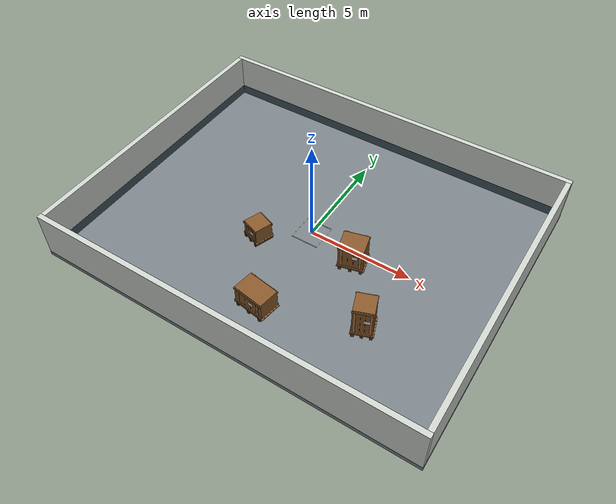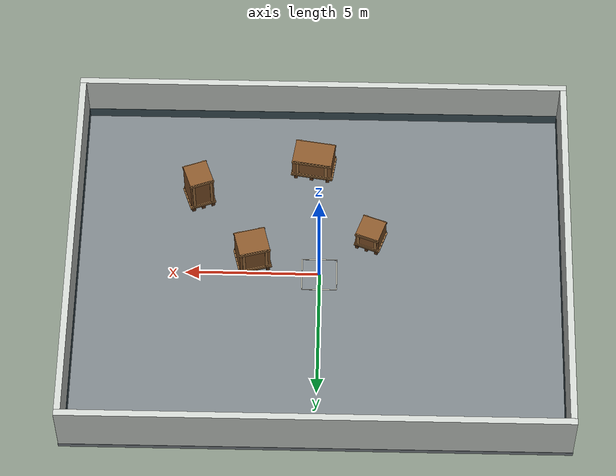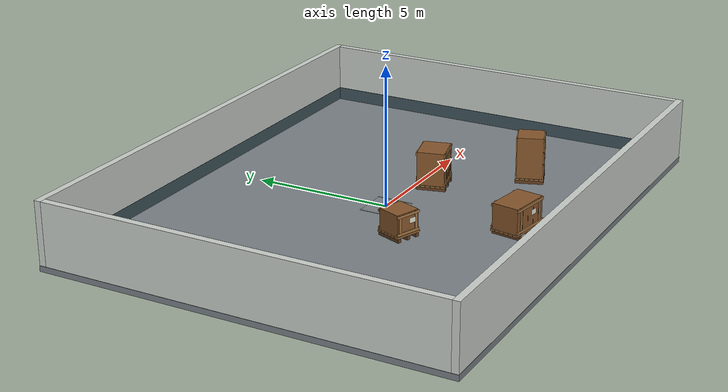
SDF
<sdf version="1.6">
 <world name="go2_workshop">
  <model name="floor">
   <static>true</static>
   <link name="body">
    <collision name="concrete_slab_collision">
     <pose>0 0 -0.1 0 0 0</pose>
     <geometry><box><size>18.5 14.5 0.2</size></box></geometry>
     <surface><friction><ode><mu>1</mu><mu2>1</mu2></ode></friction></surface>
    </collision>
    <visual name="concrete_slab">
     <pose>0 0 -0.1 0 0 0</pose>
     <geometry><box><size>18.5 14.5 0.2</size></box></geometry>
     <material>
      <ambient>0.48 0.51 0.53 1</ambient>
      <diffuse>0.48 0.51 0.53 1</diffuse>
      <specular>.08 .08 .08 1</specular>
     </material>
    </visual>
   </link>
  </model>
  <model name="perimeter_walls">
   <static>true</static>
   <link name="body">
    <collision name="north_collision">
     <pose>0 7.12 1.1 0 0 0</pose>
     <geometry><box><size>18.48 0.24 2.2</size></box></geometry>
    </collision>
    <visual name="north">
     <pose>0 7.12 1.1 0 0 0</pose>
     <geometry><box><size>18.48 0.24 2.2</size></box></geometry>
     <material>
      <ambient>0.8 0.82 0.8 1</ambient>
      <diffuse>0.8 0.82 0.8 1</diffuse>
      <specular>.08 .08 .08 1</specular>
     </material>
    </visual>
    <visual name="north_paint">
     <pose>0 6.998 0.24 0 0 0</pose>
     <geometry><box><size>18 0.004 0.48</size></box></geometry>
     <material>
      <ambient>0.25 0.33 0.36 1</ambient>
      <diffuse>0.25 0.33 0.36 1</diffuse>
      <specular>.08 .08 .08 1</specular>
     </material>
     <cast_shadows>false</cast_shadows>
    </visual>
    <collision name="south_collision">
     <pose>0 -7.12 1.1 0 0 0</pose>
     <geometry><box><size>18.48 0.24 2.2</size></box></geometry>
    </collision>
    <visual name="south">
     <pose>0 -7.12 1.1 0 0 0</pose>
     <geometry><box><size>18.48 0.24 2.2</size></box></geometry>
     <material>
      <ambient>0.8 0.82 0.8 1</ambient>
      <diffuse>0.8 0.82 0.8 1</diffuse>
      <specular>.08 .08 .08 1</specular>
     </material>
    </visual>
    <visual name="south_paint">
     <pose>0 -6.998 0.24 0 0 0</pose>
     <geometry><box><size>18 0.004 0.48</size></box></geometry>
     <material>
      <ambient>0.25 0.33 0.36 1</ambient>
      <diffuse>0.25 0.33 0.36 1</diffuse>
      <specular>.08 .08 .08 1</specular>
     </material>
     <cast_shadows>false</cast_shadows>
    </visual>
    <collision name="west_collision">
     <pose>-9.12 0 1.1 0 0 0</pose>
     <geometry><box><size>0.24 14 2.2</size></box></geometry>
    </collision>
    <visual name="west">
     <pose>-9.12 0 1.1 0 0 0</pose>
     <geometry><box><size>0.24 14 2.2</size></box></geometry>
     <material>
      <ambient>0.8 0.82 0.8 1</ambient>
      <diffuse>0.8 0.82 0.8 1</diffuse>
      <specular>.08 .08 .08 1</specular>
     </material>
    </visual>
    <visual name="west_paint">
     <pose>-8.998 0 0.24 0 0 0</pose>
     <geometry><box><size>0.004 14 0.48</size></box></geometry>
     <material>
      <ambient>0.25 0.33 0.36 1</ambient>
      <diffuse>0.25 0.33 0.36 1</diffuse>
      <specular>.08 .08 .08 1</specular>
     </material>
     <cast_shadows>false</cast_shadows>
    </visual>
    <collision name="east_collision">
     <pose>9.12 0 1.1 0 0 0</pose>
     <geometry><box><size>0.24 14 2.2</size></box></geometry>
    </collision>
    <visual name="east">
     <pose>9.12 0 1.1 0 0 0</pose>
     <geometry><box><size>0.24 14 2.2</size></box></geometry>
     <material>
      <ambient>0.8 0.82 0.8 1</ambient>
      <diffuse>0.8 0.82 0.8 1</diffuse>
      <specular>.08 .08 .08 1</specular>
     </material>
    </visual>
    <visual name="east_paint">
     <pose>8.998 0 0.24 0 0 0</pose>
     <geometry><box><size>0.004 14 0.48</size></box></geometry>
     <material>
      <ambient>0.25 0.33 0.36 1</ambient>
      <diffuse>0.25 0.33 0.36 1</diffuse>
      <specular>.08 .08 .08 1</specular>
     </material>
     <cast_shadows>false</cast_shadows>
    </visual>
   </link>
  </model>
  <model name="floor_markings">
   <static>true</static>
   <link name="body">
    <visual name="spawn_0">
     <pose>-0.65 0 0.003 0 0 0</pose>
     <geometry><box><size>0.035 1.3 0.004</size></box></geometry>
     <material>
      <ambient>0.9 0.89 0.82 1</ambient>
      <diffuse>0.9 0.89 0.82 1</diffuse>
      <specular>.08 .08 .08 1</specular>
     </material>
     <cast_shadows>false</cast_shadows>
    </visual>
    <visual name="spawn_1">
     <pose>0.65 0 0.003 0 0 0</pose>
     <geometry><box><size>0.035 1.3 0.004</size></box></geometry>
     <material>
      <ambient>0.9 0.89 0.82 1</ambient>
      <diffuse>0.9 0.89 0.82 1</diffuse>
      <specular>.08 .08 .08 1</specular>
     </material>
     <cast_shadows>false</cast_shadows>
    </visual>
    <visual name="spawn_2">
     <pose>0 -0.65 0.003 0 0 0</pose>
     <geometry><box><size>1.3 0.035 0.004</size></box></geometry>
     <material>
      <ambient>0.9 0.89 0.82 1</ambient>
      <diffuse>0.9 0.89 0.82 1</diffuse>
      <specular>.08 .08 .08 1</specular>
     </material>
     <cast_shadows>false</cast_shadows>
    </visual>
    <visual name="spawn_3">
     <pose>0 0.65 0.003 0 0 0</pose>
     <geometry><box><size>1.3 0.035 0.004</size></box></geometry>
     <material>
      <ambient>0.9 0.89 0.82 1</ambient>
      <diffuse>0.9 0.89 0.82 1</diffuse>
      <specular>.08 .08 .08 1</specular>
     </material>
     <cast_shadows>false</cast_shadows>
    </visual>
   </link>
  </model>
  <model name="cargo_island_a">
   <static>true</static>
   <pose>2.5 -0.55 0 0 0 0.250000</pose>
   <link name="body">
    <collision name="pallet_runner_0_collision">
     <pose>-0.475 0 0.07 0 0 0</pose>
     <geometry><box><size>0.13 1.05 0.14</size></box></geometry>
    </collision>
    <visual name="pallet_runner_0">
     <pose>-0.475 0 0.07 0 0 0</pose>
     <geometry><box><size>0.13 1.05 0.14</size></box></geometry>
     <material>
      <ambient>0.39 0.24 0.12 1</ambient>
      <diffuse>0.39 0.24 0.12 1</diffuse>
      <specular>.08 .08 .08 1</specular>
     </material>
    </visual>
    <collision name="pallet_runner_1_collision">
     <pose>0 0 0.07 0 0 0</pose>
     <geometry><box><size>0.13 1.05 0.14</size></box></geometry>
    </collision>
    <visual name="pallet_runner_1">
     <pose>0 0 0.07 0 0 0</pose>
     <geometry><box><size>0.13 1.05 0.14</size></box></geometry>
     <material>
      <ambient>0.39 0.24 0.12 1</ambient>
      <diffuse>0.39 0.24 0.12 1</diffuse>
      <specular>.08 .08 .08 1</specular>
     </material>
    </visual>
    <collision name="pallet_runner_2_collision">
     <pose>0.475 0 0.07 0 0 0</pose>
     <geometry><box><size>0.13 1.05 0.14</size></box></geometry>
    </collision>
    <visual name="pallet_runner_2">
     <pose>0.475 0 0.07 0 0 0</pose>
     <geometry><box><size>0.13 1.05 0.14</size></box></geometry>
     <material>
      <ambient>0.39 0.24 0.12 1</ambient>
      <diffuse>0.39 0.24 0.12 1</diffuse>
      <specular>.08 .08 .08 1</specular>
     </material>
    </visual>
    <collision name="pallet_slat_0_collision">
     <pose>0 -0.4375 0.17 0 0 0</pose>
     <geometry><box><size>1.25 0.162 0.055</size></box></geometry>
    </collision>
    <visual name="pallet_slat_0">
     <pose>0 -0.4375 0.17 0 0 0</pose>
     <geometry><box><size>1.25 0.162 0.055</size></box></geometry>
     <material>
      <ambient>0.66 0.47 0.27 1</ambient>
      <diffuse>0.66 0.47 0.27 1</diffuse>
      <specular>.08 .08 .08 1</specular>
     </material>
    </visual>
    <collision name="pallet_slat_1_collision">
     <pose>0 -0.2625 0.17 0 0 0</pose>
     <geometry><box><size>1.25 0.162 0.055</size></box></geometry>
    </collision>
    <visual name="pallet_slat_1">
     <pose>0 -0.2625 0.17 0 0 0</pose>
     <geometry><box><size>1.25 0.162 0.055</size></box></geometry>
     <material>
      <ambient>0.66 0.47 0.27 1</ambient>
      <diffuse>0.66 0.47 0.27 1</diffuse>
      <specular>.08 .08 .08 1</specular>
     </material>
    </visual>
    <collision name="pallet_slat_2_collision">
     <pose>0 -0.0875 0.17 0 0 0</pose>
     <geometry><box><size>1.25 0.162 0.055</size></box></geometry>
    </collision>
    <visual name="pallet_slat_2">
     <pose>0 -0.0875 0.17 0 0 0</pose>
     <geometry><box><size>1.25 0.162 0.055</size></box></geometry>
     <material>
      <ambient>0.66 0.47 0.27 1</ambient>
      <diffuse>0.66 0.47 0.27 1</diffuse>
      <specular>.08 .08 .08 1</specular>
     </material>
    </visual>
    <collision name="pallet_slat_3_collision">
     <pose>0 0.0875 0.17 0 0 0</pose>
     <geometry><box><size>1.25 0.162 0.055</size></box></geometry>
    </collision>
    <visual name="pallet_slat_3">
     <pose>0 0.0875 0.17 0 0 0</pose>
     <geometry><box><size>1.25 0.162 0.055</size></box></geometry>
     <material>
      <ambient>0.66 0.47 0.27 1</ambient>
      <diffuse>0.66 0.47 0.27 1</diffuse>
      <specular>.08 .08 .08 1</specular>
     </material>
    </visual>
    <collision name="pallet_slat_4_collision">
     <pose>0 0.2625 0.17 0 0 0</pose>
     <geometry><box><size>1.25 0.162 0.055</size></box></geometry>
    </collision>
    <visual name="pallet_slat_4">
     <pose>0 0.2625 0.17 0 0 0</pose>
     <geometry><box><size>1.25 0.162 0.055</size></box></geometry>
     <material>
      <ambient>0.66 0.47 0.27 1</ambient>
      <diffuse>0.66 0.47 0.27 1</diffuse>
      <specular>.08 .08 .08 1</specular>
     </material>
    </visual>
    <collision name="pallet_slat_5_collision">
     <pose>0 0.4375 0.17 0 0 0</pose>
     <geometry><box><size>1.25 0.162 0.055</size></box></geometry>
    </collision>
    <visual name="pallet_slat_5">
     <pose>0 0.4375 0.17 0 0 0</pose>
     <geometry><box><size>1.25 0.162 0.055</size></box></geometry>
     <material>
      <ambient>0.66 0.47 0.27 1</ambient>
      <diffuse>0.66 0.47 0.27 1</diffuse>
      <specular>.08 .08 .08 1</specular>
     </material>
    </visual>
    <collision name="crate_body_collision">
     <pose>0 0 0.8 0 0 0</pose>
     <geometry><box><size>1.15 0.97 1.2</size></box></geometry>
    </collision>
    <visual name="crate_body">
     <pose>0 0 0.8 0 0 0</pose>
     <geometry><box><size>1.15 0.97 1.2</size></box></geometry>
     <material>
      <ambient>0.53 0.34 0.17 1</ambient>
      <diffuse>0.53 0.34 0.17 1</diffuse>
      <specular>.08 .08 .08 1</specular>
     </material>
    </visual>
    <collision name="brace_0_0_collision">
     <pose>-0.425 -0.495 0.8 0 0 0</pose>
     <geometry><box><size>0.1 0.045 1.2</size></box></geometry>
    </collision>
    <visual name="brace_0_0">
     <pose>-0.425 -0.495 0.8 0 0 0</pose>
     <geometry><box><size>0.1 0.045 1.2</size></box></geometry>
     <material>
      <ambient>0.66 0.47 0.27 1</ambient>
      <diffuse>0.66 0.47 0.27 1</diffuse>
      <specular>.08 .08 .08 1</specular>
     </material>
    </visual>
    <collision name="brace_0_1_collision">
     <pose>0.425 -0.495 0.8 0 0 0</pose>
     <geometry><box><size>0.1 0.045 1.2</size></box></geometry>
    </collision>
    <visual name="brace_0_1">
     <pose>0.425 -0.495 0.8 0 0 0</pose>
     <geometry><box><size>0.1 0.045 1.2</size></box></geometry>
     <material>
      <ambient>0.66 0.47 0.27 1</ambient>
      <diffuse>0.66 0.47 0.27 1</diffuse>
      <specular>.08 .08 .08 1</specular>
     </material>
    </visual>
    <collision name="rail_0_0_collision">
     <pose>0 -0.495 0.27 0 0 0</pose>
     <geometry><box><size>1.19 0.05 0.09</size></box></geometry>
    </collision>
    <visual name="rail_0_0">
     <pose>0 -0.495 0.27 0 0 0</pose>
     <geometry><box><size>1.19 0.05 0.09</size></box></geometry>
     <material>
      <ambient>0.66 0.47 0.27 1</ambient>
      <diffuse>0.66 0.47 0.27 1</diffuse>
      <specular>.08 .08 .08 1</specular>
     </material>
    </visual>
    <collision name="rail_0_1_collision">
     <pose>0 -0.495 1.33 0 0 0</pose>
     <geometry><box><size>1.19 0.05 0.09</size></box></geometry>
    </collision>
    <visual name="rail_0_1">
     <pose>0 -0.495 1.33 0 0 0</pose>
     <geometry><box><size>1.19 0.05 0.09</size></box></geometry>
     <material>
      <ambient>0.66 0.47 0.27 1</ambient>
      <diffuse>0.66 0.47 0.27 1</diffuse>
      <specular>.08 .08 .08 1</specular>
     </material>
    </visual>
    <collision name="brace_1_0_collision">
     <pose>-0.425 0.495 0.8 0 0 0</pose>
     <geometry><box><size>0.1 0.045 1.2</size></box></geometry>
    </collision>
    <visual name="brace_1_0">
     <pose>-0.425 0.495 0.8 0 0 0</pose>
     <geometry><box><size>0.1 0.045 1.2</size></box></geometry>
     <material>
      <ambient>0.66 0.47 0.27 1</ambient>
      <diffuse>0.66 0.47 0.27 1</diffuse>
      <specular>.08 .08 .08 1</specular>
     </material>
    </visual>
    <collision name="brace_1_1_collision">
     <pose>0.425 0.495 0.8 0 0 0</pose>
     <geometry><box><size>0.1 0.045 1.2</size></box></geometry>
    </collision>
    <visual name="brace_1_1">
     <pose>0.425 0.495 0.8 0 0 0</pose>
     <geometry><box><size>0.1 0.045 1.2</size></box></geometry>
     <material>
      <ambient>0.66 0.47 0.27 1</ambient>
      <diffuse>0.66 0.47 0.27 1</diffuse>
      <specular>.08 .08 .08 1</specular>
     </material>
    </visual>
    <collision name="rail_1_0_collision">
     <pose>0 0.495 0.27 0 0 0</pose>
     <geometry><box><size>1.19 0.05 0.09</size></box></geometry>
    </collision>
    <visual name="rail_1_0">
     <pose>0 0.495 0.27 0 0 0</pose>
     <geometry><box><size>1.19 0.05 0.09</size></box></geometry>
     <material>
      <ambient>0.66 0.47 0.27 1</ambient>
      <diffuse>0.66 0.47 0.27 1</diffuse>
      <specular>.08 .08 .08 1</specular>
     </material>
    </visual>
    <collision name="rail_1_1_collision">
     <pose>0 0.495 1.33 0 0 0</pose>
     <geometry><box><size>1.19 0.05 0.09</size></box></geometry>
    </collision>
    <visual name="rail_1_1">
     <pose>0 0.495 1.33 0 0 0</pose>
     <geometry><box><size>1.19 0.05 0.09</size></box></geometry>
     <material>
      <ambient>0.66 0.47 0.27 1</ambient>
      <diffuse>0.66 0.47 0.27 1</diffuse>
      <specular>.08 .08 .08 1</specular>
     </material>
    </visual>
    <visual name="panel_line_1">
     <pose>-0.375 -0.511 0.8 0 0 0</pose>
     <geometry><box><size>0.008 0.003 1.1</size></box></geometry>
     <material>
      <ambient>0.39 0.24 0.12 1</ambient>
      <diffuse>0.39 0.24 0.12 1</diffuse>
      <specular>.08 .08 .08 1</specular>
     </material>
     <cast_shadows>false</cast_shadows>
    </visual>
    <visual name="panel_line_2">
     <pose>-0.125 -0.511 0.8 0 0 0</pose>
     <geometry><box><size>0.008 0.003 1.1</size></box></geometry>
     <material>
      <ambient>0.39 0.24 0.12 1</ambient>
      <diffuse>0.39 0.24 0.12 1</diffuse>
      <specular>.08 .08 .08 1</specular>
     </material>
     <cast_shadows>false</cast_shadows>
    </visual>
    <visual name="panel_line_3">
     <pose>0.125 -0.511 0.8 0 0 0</pose>
     <geometry><box><size>0.008 0.003 1.1</size></box></geometry>
     <material>
      <ambient>0.39 0.24 0.12 1</ambient>
      <diffuse>0.39 0.24 0.12 1</diffuse>
      <specular>.08 .08 .08 1</specular>
     </material>
     <cast_shadows>false</cast_shadows>
    </visual>
    <visual name="panel_line_4">
     <pose>0.375 -0.511 0.8 0 0 0</pose>
     <geometry><box><size>0.008 0.003 1.1</size></box></geometry>
     <material>
      <ambient>0.39 0.24 0.12 1</ambient>
      <diffuse>0.39 0.24 0.12 1</diffuse>
      <specular>.08 .08 .08 1</specular>
     </material>
     <cast_shadows>false</cast_shadows>
    </visual>
    <visual name="label">
     <pose>0.18 -0.521 0.92 0 0 0</pose>
     <geometry><box><size>0.26 0.005 0.18</size></box></geometry>
     <material>
      <ambient>0.9 0.89 0.82 1</ambient>
      <diffuse>0.9 0.89 0.82 1</diffuse>
      <specular>.08 .08 .08 1</specular>
     </material>
     <cast_shadows>false</cast_shadows>
    </visual>
   </link>
  </model>
  <model name="cargo_island_b">
   <static>true</static>
   <pose>-1.9 -1.5 0 0 0 -0.350000</pose>
   <link name="body">
    <collision name="pallet_runner_0_collision">
     <pose>-0.38 0 0.07 0 0 0</pose>
     <geometry><box><size>0.13 0.95 0.14</size></box></geometry>
    </collision>
    <visual name="pallet_runner_0">
     <pose>-0.38 0 0.07 0 0 0</pose>
     <geometry><box><size>0.13 0.95 0.14</size></box></geometry>
     <material>
      <ambient>0.39 0.24 0.12 1</ambient>
      <diffuse>0.39 0.24 0.12 1</diffuse>
      <specular>.08 .08 .08 1</specular>
     </material>
    </visual>
    <collision name="pallet_runner_1_collision">
     <pose>0 0 0.07 0 0 0</pose>
     <geometry><box><size>0.13 0.95 0.14</size></box></geometry>
    </collision>
    <visual name="pallet_runner_1">
     <pose>0 0 0.07 0 0 0</pose>
     <geometry><box><size>0.13 0.95 0.14</size></box></geometry>
     <material>
      <ambient>0.39 0.24 0.12 1</ambient>
      <diffuse>0.39 0.24 0.12 1</diffuse>
      <specular>.08 .08 .08 1</specular>
     </material>
    </visual>
    <collision name="pallet_runner_2_collision">
     <pose>0.38 0 0.07 0 0 0</pose>
     <geometry><box><size>0.13 0.95 0.14</size></box></geometry>
    </collision>
    <visual name="pallet_runner_2">
     <pose>0.38 0 0.07 0 0 0</pose>
     <geometry><box><size>0.13 0.95 0.14</size></box></geometry>
     <material>
      <ambient>0.39 0.24 0.12 1</ambient>
      <diffuse>0.39 0.24 0.12 1</diffuse>
      <specular>.08 .08 .08 1</specular>
     </material>
    </visual>
    <collision name="pallet_slat_0_collision">
     <pose>0 -0.39583 0.17 0 0 0</pose>
     <geometry><box><size>1 0.14533 0.055</size></box></geometry>
    </collision>
    <visual name="pallet_slat_0">
     <pose>0 -0.39583 0.17 0 0 0</pose>
     <geometry><box><size>1 0.14533 0.055</size></box></geometry>
     <material>
      <ambient>0.66 0.47 0.27 1</ambient>
      <diffuse>0.66 0.47 0.27 1</diffuse>
      <specular>.08 .08 .08 1</specular>
     </material>
    </visual>
    <collision name="pallet_slat_1_collision">
     <pose>0 -0.2375 0.17 0 0 0</pose>
     <geometry><box><size>1 0.14533 0.055</size></box></geometry>
    </collision>
    <visual name="pallet_slat_1">
     <pose>0 -0.2375 0.17 0 0 0</pose>
     <geometry><box><size>1 0.14533 0.055</size></box></geometry>
     <material>
      <ambient>0.66 0.47 0.27 1</ambient>
      <diffuse>0.66 0.47 0.27 1</diffuse>
      <specular>.08 .08 .08 1</specular>
     </material>
    </visual>
    <collision name="pallet_slat_2_collision">
     <pose>0 -0.079167 0.17 0 0 0</pose>
     <geometry><box><size>1 0.14533 0.055</size></box></geometry>
    </collision>
    <visual name="pallet_slat_2">
     <pose>0 -0.079167 0.17 0 0 0</pose>
     <geometry><box><size>1 0.14533 0.055</size></box></geometry>
     <material>
      <ambient>0.66 0.47 0.27 1</ambient>
      <diffuse>0.66 0.47 0.27 1</diffuse>
      <specular>.08 .08 .08 1</specular>
     </material>
    </visual>
    <collision name="pallet_slat_3_collision">
     <pose>0 0.079167 0.17 0 0 0</pose>
     <geometry><box><size>1 0.14533 0.055</size></box></geometry>
    </collision>
    <visual name="pallet_slat_3">
     <pose>0 0.079167 0.17 0 0 0</pose>
     <geometry><box><size>1 0.14533 0.055</size></box></geometry>
     <material>
      <ambient>0.66 0.47 0.27 1</ambient>
      <diffuse>0.66 0.47 0.27 1</diffuse>
      <specular>.08 .08 .08 1</specular>
     </material>
    </visual>
    <collision name="pallet_slat_4_collision">
     <pose>0 0.2375 0.17 0 0 0</pose>
     <geometry><box><size>1 0.14533 0.055</size></box></geometry>
    </collision>
    <visual name="pallet_slat_4">
     <pose>0 0.2375 0.17 0 0 0</pose>
     <geometry><box><size>1 0.14533 0.055</size></box></geometry>
     <material>
      <ambient>0.66 0.47 0.27 1</ambient>
      <diffuse>0.66 0.47 0.27 1</diffuse>
      <specular>.08 .08 .08 1</specular>
     </material>
    </visual>
    <collision name="pallet_slat_5_collision">
     <pose>0 0.39583 0.17 0 0 0</pose>
     <geometry><box><size>1 0.14533 0.055</size></box></geometry>
    </collision>
    <visual name="pallet_slat_5">
     <pose>0 0.39583 0.17 0 0 0</pose>
     <geometry><box><size>1 0.14533 0.055</size></box></geometry>
     <material>
      <ambient>0.66 0.47 0.27 1</ambient>
      <diffuse>0.66 0.47 0.27 1</diffuse>
      <specular>.08 .08 .08 1</specular>
     </material>
    </visual>
    <collision name="crate_body_collision">
     <pose>0 0 0.575 0 0 0</pose>
     <geometry><box><size>0.9 0.87 0.75</size></box></geometry>
    </collision>
    <visual name="crate_body">
     <pose>0 0 0.575 0 0 0</pose>
     <geometry><box><size>0.9 0.87 0.75</size></box></geometry>
     <material>
      <ambient>0.53 0.34 0.17 1</ambient>
      <diffuse>0.53 0.34 0.17 1</diffuse>
      <specular>.08 .08 .08 1</specular>
     </material>
    </visual>
    <collision name="brace_0_0_collision">
     <pose>-0.34 -0.445 0.575 0 0 0</pose>
     <geometry><box><size>0.1 0.045 0.75</size></box></geometry>
    </collision>
    <visual name="brace_0_0">
     <pose>-0.34 -0.445 0.575 0 0 0</pose>
     <geometry><box><size>0.1 0.045 0.75</size></box></geometry>
     <material>
      <ambient>0.66 0.47 0.27 1</ambient>
      <diffuse>0.66 0.47 0.27 1</diffuse>
      <specular>.08 .08 .08 1</specular>
     </material>
    </visual>
    <collision name="brace_0_1_collision">
     <pose>0.34 -0.445 0.575 0 0 0</pose>
     <geometry><box><size>0.1 0.045 0.75</size></box></geometry>
    </collision>
    <visual name="brace_0_1">
     <pose>0.34 -0.445 0.575 0 0 0</pose>
     <geometry><box><size>0.1 0.045 0.75</size></box></geometry>
     <material>
      <ambient>0.66 0.47 0.27 1</ambient>
      <diffuse>0.66 0.47 0.27 1</diffuse>
      <specular>.08 .08 .08 1</specular>
     </material>
    </visual>
    <collision name="rail_0_0_collision">
     <pose>0 -0.445 0.27 0 0 0</pose>
     <geometry><box><size>0.94 0.05 0.09</size></box></geometry>
    </collision>
    <visual name="rail_0_0">
     <pose>0 -0.445 0.27 0 0 0</pose>
     <geometry><box><size>0.94 0.05 0.09</size></box></geometry>
     <material>
      <ambient>0.66 0.47 0.27 1</ambient>
      <diffuse>0.66 0.47 0.27 1</diffuse>
      <specular>.08 .08 .08 1</specular>
     </material>
    </visual>
    <collision name="rail_0_1_collision">
     <pose>0 -0.445 0.88 0 0 0</pose>
     <geometry><box><size>0.94 0.05 0.09</size></box></geometry>
    </collision>
    <visual name="rail_0_1">
     <pose>0 -0.445 0.88 0 0 0</pose>
     <geometry><box><size>0.94 0.05 0.09</size></box></geometry>
     <material>
      <ambient>0.66 0.47 0.27 1</ambient>
      <diffuse>0.66 0.47 0.27 1</diffuse>
      <specular>.08 .08 .08 1</specular>
     </material>
    </visual>
    <collision name="brace_1_0_collision">
     <pose>-0.34 0.445 0.575 0 0 0</pose>
     <geometry><box><size>0.1 0.045 0.75</size></box></geometry>
    </collision>
    <visual name="brace_1_0">
     <pose>-0.34 0.445 0.575 0 0 0</pose>
     <geometry><box><size>0.1 0.045 0.75</size></box></geometry>
     <material>
      <ambient>0.66 0.47 0.27 1</ambient>
      <diffuse>0.66 0.47 0.27 1</diffuse>
      <specular>.08 .08 .08 1</specular>
     </material>
    </visual>
    <collision name="brace_1_1_collision">
     <pose>0.34 0.445 0.575 0 0 0</pose>
     <geometry><box><size>0.1 0.045 0.75</size></box></geometry>
    </collision>
    <visual name="brace_1_1">
     <pose>0.34 0.445 0.575 0 0 0</pose>
     <geometry><box><size>0.1 0.045 0.75</size></box></geometry>
     <material>
      <ambient>0.66 0.47 0.27 1</ambient>
      <diffuse>0.66 0.47 0.27 1</diffuse>
      <specular>.08 .08 .08 1</specular>
     </material>
    </visual>
    <collision name="rail_1_0_collision">
     <pose>0 0.445 0.27 0 0 0</pose>
     <geometry><box><size>0.94 0.05 0.09</size></box></geometry>
    </collision>
    <visual name="rail_1_0">
     <pose>0 0.445 0.27 0 0 0</pose>
     <geometry><box><size>0.94 0.05 0.09</size></box></geometry>
     <material>
      <ambient>0.66 0.47 0.27 1</ambient>
      <diffuse>0.66 0.47 0.27 1</diffuse>
      <specular>.08 .08 .08 1</specular>
     </material>
    </visual>
    <collision name="rail_1_1_collision">
     <pose>0 0.445 0.88 0 0 0</pose>
     <geometry><box><size>0.94 0.05 0.09</size></box></geometry>
    </collision>
    <visual name="rail_1_1">
     <pose>0 0.445 0.88 0 0 0</pose>
     <geometry><box><size>0.94 0.05 0.09</size></box></geometry>
     <material>
      <ambient>0.66 0.47 0.27 1</ambient>
      <diffuse>0.66 0.47 0.27 1</diffuse>
      <specular>.08 .08 .08 1</specular>
     </material>
    </visual>
    <visual name="panel_line_1">
     <pose>-0.3 -0.461 0.575 0 0 0</pose>
     <geometry><box><size>0.008 0.003 0.65</size></box></geometry>
     <material>
      <ambient>0.39 0.24 0.12 1</ambient>
      <diffuse>0.39 0.24 0.12 1</diffuse>
      <specular>.08 .08 .08 1</specular>
     </material>
     <cast_shadows>false</cast_shadows>
    </visual>
    <visual name="panel_line_2">
     <pose>-0.1 -0.461 0.575 0 0 0</pose>
     <geometry><box><size>0.008 0.003 0.65</size></box></geometry>
     <material>
      <ambient>0.39 0.24 0.12 1</ambient>
      <diffuse>0.39 0.24 0.12 1</diffuse>
      <specular>.08 .08 .08 1</specular>
     </material>
     <cast_shadows>false</cast_shadows>
    </visual>
    <visual name="panel_line_3">
     <pose>0.1 -0.461 0.575 0 0 0</pose>
     <geometry><box><size>0.008 0.003 0.65</size></box></geometry>
     <material>
      <ambient>0.39 0.24 0.12 1</ambient>
      <diffuse>0.39 0.24 0.12 1</diffuse>
      <specular>.08 .08 .08 1</specular>
     </material>
     <cast_shadows>false</cast_shadows>
    </visual>
    <visual name="panel_line_4">
     <pose>0.3 -0.461 0.575 0 0 0</pose>
     <geometry><box><size>0.008 0.003 0.65</size></box></geometry>
     <material>
      <ambient>0.39 0.24 0.12 1</ambient>
      <diffuse>0.39 0.24 0.12 1</diffuse>
      <specular>.08 .08 .08 1</specular>
     </material>
     <cast_shadows>false</cast_shadows>
    </visual>
    <visual name="label">
     <pose>0.18 -0.471 0.65 0 0 0</pose>
     <geometry><box><size>0.26 0.005 0.18</size></box></geometry>
     <material>
      <ambient>0.9 0.89 0.82 1</ambient>
      <diffuse>0.9 0.89 0.82 1</diffuse>
      <specular>.08 .08 .08 1</specular>
     </material>
     <cast_shadows>false</cast_shadows>
    </visual>
   </link>
  </model>
  <model name="south_crate">
   <static>true</static>
   <pose>0.3 -4.7 0 0 0 -0.150000</pose>
   <link name="body">
    <collision name="pallet_runner_0_collision">
     <pose>-0.608 0 0.07 0 0 0</pose>
     <geometry><box><size>0.13 1.05 0.14</size></box></geometry>
    </collision>
    <visual name="pallet_runner_0">
     <pose>-0.608 0 0.07 0 0 0</pose>
     <geometry><box><size>0.13 1.05 0.14</size></box></geometry>
     <material>
      <ambient>0.39 0.24 0.12 1</ambient>
      <diffuse>0.39 0.24 0.12 1</diffuse>
      <specular>.08 .08 .08 1</specular>
     </material>
    </visual>
    <collision name="pallet_runner_1_collision">
     <pose>0 0 0.07 0 0 0</pose>
     <geometry><box><size>0.13 1.05 0.14</size></box></geometry>
    </collision>
    <visual name="pallet_runner_1">
     <pose>0 0 0.07 0 0 0</pose>
     <geometry><box><size>0.13 1.05 0.14</size></box></geometry>
     <material>
      <ambient>0.39 0.24 0.12 1</ambient>
      <diffuse>0.39 0.24 0.12 1</diffuse>
      <specular>.08 .08 .08 1</specular>
     </material>
    </visual>
    <collision name="pallet_runner_2_collision">
     <pose>0.608 0 0.07 0 0 0</pose>
     <geometry><box><size>0.13 1.05 0.14</size></box></geometry>
    </collision>
    <visual name="pallet_runner_2">
     <pose>0.608 0 0.07 0 0 0</pose>
     <geometry><box><size>0.13 1.05 0.14</size></box></geometry>
     <material>
      <ambient>0.39 0.24 0.12 1</ambient>
      <diffuse>0.39 0.24 0.12 1</diffuse>
      <specular>.08 .08 .08 1</specular>
     </material>
    </visual>
    <collision name="pallet_slat_0_collision">
     <pose>0 -0.4375 0.17 0 0 0</pose>
     <geometry><box><size>1.6 0.162 0.055</size></box></geometry>
    </collision>
    <visual name="pallet_slat_0">
     <pose>0 -0.4375 0.17 0 0 0</pose>
     <geometry><box><size>1.6 0.162 0.055</size></box></geometry>
     <material>
      <ambient>0.66 0.47 0.27 1</ambient>
      <diffuse>0.66 0.47 0.27 1</diffuse>
      <specular>.08 .08 .08 1</specular>
     </material>
    </visual>
    <collision name="pallet_slat_1_collision">
     <pose>0 -0.2625 0.17 0 0 0</pose>
     <geometry><box><size>1.6 0.162 0.055</size></box></geometry>
    </collision>
    <visual name="pallet_slat_1">
     <pose>0 -0.2625 0.17 0 0 0</pose>
     <geometry><box><size>1.6 0.162 0.055</size></box></geometry>
     <material>
      <ambient>0.66 0.47 0.27 1</ambient>
      <diffuse>0.66 0.47 0.27 1</diffuse>
      <specular>.08 .08 .08 1</specular>
     </material>
    </visual>
    <collision name="pallet_slat_2_collision">
     <pose>0 -0.0875 0.17 0 0 0</pose>
     <geometry><box><size>1.6 0.162 0.055</size></box></geometry>
    </collision>
    <visual name="pallet_slat_2">
     <pose>0 -0.0875 0.17 0 0 0</pose>
     <geometry><box><size>1.6 0.162 0.055</size></box></geometry>
     <material>
      <ambient>0.66 0.47 0.27 1</ambient>
      <diffuse>0.66 0.47 0.27 1</diffuse>
      <specular>.08 .08 .08 1</specular>
     </material>
    </visual>
    <collision name="pallet_slat_3_collision">
     <pose>0 0.0875 0.17 0 0 0</pose>
     <geometry><box><size>1.6 0.162 0.055</size></box></geometry>
    </collision>
    <visual name="pallet_slat_3">
     <pose>0 0.0875 0.17 0 0 0</pose>
     <geometry><box><size>1.6 0.162 0.055</size></box></geometry>
     <material>
      <ambient>0.66 0.47 0.27 1</ambient>
      <diffuse>0.66 0.47 0.27 1</diffuse>
      <specular>.08 .08 .08 1</specular>
     </material>
    </visual>
    <collision name="pallet_slat_4_collision">
     <pose>0 0.2625 0.17 0 0 0</pose>
     <geometry><box><size>1.6 0.162 0.055</size></box></geometry>
    </collision>
    <visual name="pallet_slat_4">
     <pose>0 0.2625 0.17 0 0 0</pose>
     <geometry><box><size>1.6 0.162 0.055</size></box></geometry>
     <material>
      <ambient>0.66 0.47 0.27 1</ambient>
      <diffuse>0.66 0.47 0.27 1</diffuse>
      <specular>.08 .08 .08 1</specular>
     </material>
    </visual>
    <collision name="pallet_slat_5_collision">
     <pose>0 0.4375 0.17 0 0 0</pose>
     <geometry><box><size>1.6 0.162 0.055</size></box></geometry>
    </collision>
    <visual name="pallet_slat_5">
     <pose>0 0.4375 0.17 0 0 0</pose>
     <geometry><box><size>1.6 0.162 0.055</size></box></geometry>
     <material>
      <ambient>0.66 0.47 0.27 1</ambient>
      <diffuse>0.66 0.47 0.27 1</diffuse>
      <specular>.08 .08 .08 1</specular>
     </material>
    </visual>
    <collision name="crate_body_collision">
     <pose>0 0 0.65 0 0 0</pose>
     <geometry><box><size>1.5 0.97 0.9</size></box></geometry>
    </collision>
    <visual name="crate_body">
     <pose>0 0 0.65 0 0 0</pose>
     <geometry><box><size>1.5 0.97 0.9</size></box></geometry>
     <material>
      <ambient>0.53 0.34 0.17 1</ambient>
      <diffuse>0.53 0.34 0.17 1</diffuse>
      <specular>.08 .08 .08 1</specular>
     </material>
    </visual>
    <collision name="brace_0_0_collision">
     <pose>-0.544 -0.495 0.65 0 0 0</pose>
     <geometry><box><size>0.1 0.045 0.9</size></box></geometry>
    </collision>
    <visual name="brace_0_0">
     <pose>-0.544 -0.495 0.65 0 0 0</pose>
     <geometry><box><size>0.1 0.045 0.9</size></box></geometry>
     <material>
      <ambient>0.66 0.47 0.27 1</ambient>
      <diffuse>0.66 0.47 0.27 1</diffuse>
      <specular>.08 .08 .08 1</specular>
     </material>
    </visual>
    <collision name="brace_0_1_collision">
     <pose>0.544 -0.495 0.65 0 0 0</pose>
     <geometry><box><size>0.1 0.045 0.9</size></box></geometry>
    </collision>
    <visual name="brace_0_1">
     <pose>0.544 -0.495 0.65 0 0 0</pose>
     <geometry><box><size>0.1 0.045 0.9</size></box></geometry>
     <material>
      <ambient>0.66 0.47 0.27 1</ambient>
      <diffuse>0.66 0.47 0.27 1</diffuse>
      <specular>.08 .08 .08 1</specular>
     </material>
    </visual>
    <collision name="rail_0_0_collision">
     <pose>0 -0.495 0.27 0 0 0</pose>
     <geometry><box><size>1.54 0.05 0.09</size></box></geometry>
    </collision>
    <visual name="rail_0_0">
     <pose>0 -0.495 0.27 0 0 0</pose>
     <geometry><box><size>1.54 0.05 0.09</size></box></geometry>
     <material>
      <ambient>0.66 0.47 0.27 1</ambient>
      <diffuse>0.66 0.47 0.27 1</diffuse>
      <specular>.08 .08 .08 1</specular>
     </material>
    </visual>
    <collision name="rail_0_1_collision">
     <pose>0 -0.495 1.03 0 0 0</pose>
     <geometry><box><size>1.54 0.05 0.09</size></box></geometry>
    </collision>
    <visual name="rail_0_1">
     <pose>0 -0.495 1.03 0 0 0</pose>
     <geometry><box><size>1.54 0.05 0.09</size></box></geometry>
     <material>
      <ambient>0.66 0.47 0.27 1</ambient>
      <diffuse>0.66 0.47 0.27 1</diffuse>
      <specular>.08 .08 .08 1</specular>
     </material>
    </visual>
    <collision name="brace_1_0_collision">
     <pose>-0.544 0.495 0.65 0 0 0</pose>
     <geometry><box><size>0.1 0.045 0.9</size></box></geometry>
    </collision>
    <visual name="brace_1_0">
     <pose>-0.544 0.495 0.65 0 0 0</pose>
     <geometry><box><size>0.1 0.045 0.9</size></box></geometry>
     <material>
      <ambient>0.66 0.47 0.27 1</ambient>
      <diffuse>0.66 0.47 0.27 1</diffuse>
      <specular>.08 .08 .08 1</specular>
     </material>
    </visual>
    <collision name="brace_1_1_collision">
     <pose>0.544 0.495 0.65 0 0 0</pose>
     <geometry><box><size>0.1 0.045 0.9</size></box></geometry>
    </collision>
    <visual name="brace_1_1">
     <pose>0.544 0.495 0.65 0 0 0</pose>
     <geometry><box><size>0.1 0.045 0.9</size></box></geometry>
     <material>
      <ambient>0.66 0.47 0.27 1</ambient>
      <diffuse>0.66 0.47 0.27 1</diffuse>
      <specular>.08 .08 .08 1</specular>
     </material>
    </visual>
    <collision name="rail_1_0_collision">
     <pose>0 0.495 0.27 0 0 0</pose>
     <geometry><box><size>1.54 0.05 0.09</size></box></geometry>
    </collision>
    <visual name="rail_1_0">
     <pose>0 0.495 0.27 0 0 0</pose>
     <geometry><box><size>1.54 0.05 0.09</size></box></geometry>
     <material>
      <ambient>0.66 0.47 0.27 1</ambient>
      <diffuse>0.66 0.47 0.27 1</diffuse>
      <specular>.08 .08 .08 1</specular>
     </material>
    </visual>
    <collision name="rail_1_1_collision">
     <pose>0 0.495 1.03 0 0 0</pose>
     <geometry><box><size>1.54 0.05 0.09</size></box></geometry>
    </collision>
    <visual name="rail_1_1">
     <pose>0 0.495 1.03 0 0 0</pose>
     <geometry><box><size>1.54 0.05 0.09</size></box></geometry>
     <material>
      <ambient>0.66 0.47 0.27 1</ambient>
      <diffuse>0.66 0.47 0.27 1</diffuse>
      <specular>.08 .08 .08 1</specular>
     </material>
    </visual>
    <visual name="panel_line_1">
     <pose>-0.48 -0.511 0.65 0 0 0</pose>
     <geometry><box><size>0.008 0.003 0.8</size></box></geometry>
     <material>
      <ambient>0.39 0.24 0.12 1</ambient>
      <diffuse>0.39 0.24 0.12 1</diffuse>
      <specular>.08 .08 .08 1</specular>
     </material>
     <cast_shadows>false</cast_shadows>
    </visual>
    <visual name="panel_line_2">
     <pose>-0.16 -0.511 0.65 0 0 0</pose>
     <geometry><box><size>0.008 0.003 0.8</size></box></geometry>
     <material>
      <ambient>0.39 0.24 0.12 1</ambient>
      <diffuse>0.39 0.24 0.12 1</diffuse>
      <specular>.08 .08 .08 1</specular>
     </material>
     <cast_shadows>false</cast_shadows>
    </visual>
    <visual name="panel_line_3">
     <pose>0.16 -0.511 0.65 0 0 0</pose>
     <geometry><box><size>0.008 0.003 0.8</size></box></geometry>
     <material>
      <ambient>0.39 0.24 0.12 1</ambient>
      <diffuse>0.39 0.24 0.12 1</diffuse>
      <specular>.08 .08 .08 1</specular>
     </material>
     <cast_shadows>false</cast_shadows>
    </visual>
    <visual name="panel_line_4">
     <pose>0.48 -0.511 0.65 0 0 0</pose>
     <geometry><box><size>0.008 0.003 0.8</size></box></geometry>
     <material>
      <ambient>0.39 0.24 0.12 1</ambient>
      <diffuse>0.39 0.24 0.12 1</diffuse>
      <specular>.08 .08 .08 1</specular>
     </material>
     <cast_shadows>false</cast_shadows>
    </visual>
    <visual name="label">
     <pose>0.18 -0.521 0.74 0 0 0</pose>
     <geometry><box><size>0.26 0.005 0.18</size></box></geometry>
     <material>
      <ambient>0.9 0.89 0.82 1</ambient>
      <diffuse>0.9 0.89 0.82 1</diffuse>
      <specular>.08 .08 .08 1</specular>
     </material>
     <cast_shadows>false</cast_shadows>
    </visual>
   </link>
  </model>
  <model name="south_crate_tall">
   <static>true</static>
   <pose>4.6 -3.3 0 0 0 0.350000</pose>
   <link name="body">
    <collision name="pallet_runner_0_collision">
     <pose>-0.38 0 0.07 0 0 0</pose>
     <geometry><box><size>0.13 1 0.14</size></box></geometry>
    </collision>
    <visual name="pallet_runner_0">
     <pose>-0.38 0 0.07 0 0 0</pose>
     <geometry><box><size>0.13 1 0.14</size></box></geometry>
     <material>
      <ambient>0.39 0.24 0.12 1</ambient>
      <diffuse>0.39 0.24 0.12 1</diffuse>
      <specular>.08 .08 .08 1</specular>
     </material>
    </visual>
    <collision name="pallet_runner_1_collision">
     <pose>0 0 0.07 0 0 0</pose>
     <geometry><box><size>0.13 1 0.14</size></box></geometry>
    </collision>
    <visual name="pallet_runner_1">
     <pose>0 0 0.07 0 0 0</pose>
     <geometry><box><size>0.13 1 0.14</size></box></geometry>
     <material>
      <ambient>0.39 0.24 0.12 1</ambient>
      <diffuse>0.39 0.24 0.12 1</diffuse>
      <specular>.08 .08 .08 1</specular>
     </material>
    </visual>
    <collision name="pallet_runner_2_collision">
     <pose>0.38 0 0.07 0 0 0</pose>
     <geometry><box><size>0.13 1 0.14</size></box></geometry>
    </collision>
    <visual name="pallet_runner_2">
     <pose>0.38 0 0.07 0 0 0</pose>
     <geometry><box><size>0.13 1 0.14</size></box></geometry>
     <material>
      <ambient>0.39 0.24 0.12 1</ambient>
      <diffuse>0.39 0.24 0.12 1</diffuse>
      <specular>.08 .08 .08 1</specular>
     </material>
    </visual>
    <collision name="pallet_slat_0_collision">
     <pose>0 -0.41667 0.17 0 0 0</pose>
     <geometry><box><size>1 0.15367 0.055</size></box></geometry>
    </collision>
    <visual name="pallet_slat_0">
     <pose>0 -0.41667 0.17 0 0 0</pose>
     <geometry><box><size>1 0.15367 0.055</size></box></geometry>
     <material>
      <ambient>0.66 0.47 0.27 1</ambient>
      <diffuse>0.66 0.47 0.27 1</diffuse>
      <specular>.08 .08 .08 1</specular>
     </material>
    </visual>
    <collision name="pallet_slat_1_collision">
     <pose>0 -0.25 0.17 0 0 0</pose>
     <geometry><box><size>1 0.15367 0.055</size></box></geometry>
    </collision>
    <visual name="pallet_slat_1">
     <pose>0 -0.25 0.17 0 0 0</pose>
     <geometry><box><size>1 0.15367 0.055</size></box></geometry>
     <material>
      <ambient>0.66 0.47 0.27 1</ambient>
      <diffuse>0.66 0.47 0.27 1</diffuse>
      <specular>.08 .08 .08 1</specular>
     </material>
    </visual>
    <collision name="pallet_slat_2_collision">
     <pose>0 -0.083333 0.17 0 0 0</pose>
     <geometry><box><size>1 0.15367 0.055</size></box></geometry>
    </collision>
    <visual name="pallet_slat_2">
     <pose>0 -0.083333 0.17 0 0 0</pose>
     <geometry><box><size>1 0.15367 0.055</size></box></geometry>
     <material>
      <ambient>0.66 0.47 0.27 1</ambient>
      <diffuse>0.66 0.47 0.27 1</diffuse>
      <specular>.08 .08 .08 1</specular>
     </material>
    </visual>
    <collision name="pallet_slat_3_collision">
     <pose>0 0.083333 0.17 0 0 0</pose>
     <geometry><box><size>1 0.15367 0.055</size></box></geometry>
    </collision>
    <visual name="pallet_slat_3">
     <pose>0 0.083333 0.17 0 0 0</pose>
     <geometry><box><size>1 0.15367 0.055</size></box></geometry>
     <material>
      <ambient>0.66 0.47 0.27 1</ambient>
      <diffuse>0.66 0.47 0.27 1</diffuse>
      <specular>.08 .08 .08 1</specular>
     </material>
    </visual>
    <collision name="pallet_slat_4_collision">
     <pose>0 0.25 0.17 0 0 0</pose>
     <geometry><box><size>1 0.15367 0.055</size></box></geometry>
    </collision>
    <visual name="pallet_slat_4">
     <pose>0 0.25 0.17 0 0 0</pose>
     <geometry><box><size>1 0.15367 0.055</size></box></geometry>
     <material>
      <ambient>0.66 0.47 0.27 1</ambient>
      <diffuse>0.66 0.47 0.27 1</diffuse>
      <specular>.08 .08 .08 1</specular>
     </material>
    </visual>
    <collision name="pallet_slat_5_collision">
     <pose>0 0.41667 0.17 0 0 0</pose>
     <geometry><box><size>1 0.15367 0.055</size></box></geometry>
    </collision>
    <visual name="pallet_slat_5">
     <pose>0 0.41667 0.17 0 0 0</pose>
     <geometry><box><size>1 0.15367 0.055</size></box></geometry>
     <material>
      <ambient>0.66 0.47 0.27 1</ambient>
      <diffuse>0.66 0.47 0.27 1</diffuse>
      <specular>.08 .08 .08 1</specular>
     </material>
    </visual>
    <collision name="crate_body_collision">
     <pose>0 0 0.95 0 0 0</pose>
     <geometry><box><size>0.9 0.92 1.5</size></box></geometry>
    </collision>
    <visual name="crate_body">
     <pose>0 0 0.95 0 0 0</pose>
     <geometry><box><size>0.9 0.92 1.5</size></box></geometry>
     <material>
      <ambient>0.53 0.34 0.17 1</ambient>
      <diffuse>0.53 0.34 0.17 1</diffuse>
      <specular>.08 .08 .08 1</specular>
     </material>
    </visual>
    <collision name="brace_0_0_collision">
     <pose>-0.34 -0.47 0.95 0 0 0</pose>
     <geometry><box><size>0.1 0.045 1.5</size></box></geometry>
    </collision>
    <visual name="brace_0_0">
     <pose>-0.34 -0.47 0.95 0 0 0</pose>
     <geometry><box><size>0.1 0.045 1.5</size></box></geometry>
     <material>
      <ambient>0.66 0.47 0.27 1</ambient>
      <diffuse>0.66 0.47 0.27 1</diffuse>
      <specular>.08 .08 .08 1</specular>
     </material>
    </visual>
    <collision name="brace_0_1_collision">
     <pose>0.34 -0.47 0.95 0 0 0</pose>
     <geometry><box><size>0.1 0.045 1.5</size></box></geometry>
    </collision>
    <visual name="brace_0_1">
     <pose>0.34 -0.47 0.95 0 0 0</pose>
     <geometry><box><size>0.1 0.045 1.5</size></box></geometry>
     <material>
      <ambient>0.66 0.47 0.27 1</ambient>
      <diffuse>0.66 0.47 0.27 1</diffuse>
      <specular>.08 .08 .08 1</specular>
     </material>
    </visual>
    <collision name="rail_0_0_collision">
     <pose>0 -0.47 0.27 0 0 0</pose>
     <geometry><box><size>0.94 0.05 0.09</size></box></geometry>
    </collision>
    <visual name="rail_0_0">
     <pose>0 -0.47 0.27 0 0 0</pose>
     <geometry><box><size>0.94 0.05 0.09</size></box></geometry>
     <material>
      <ambient>0.66 0.47 0.27 1</ambient>
      <diffuse>0.66 0.47 0.27 1</diffuse>
      <specular>.08 .08 .08 1</specular>
     </material>
    </visual>
    <collision name="rail_0_1_collision">
     <pose>0 -0.47 1.63 0 0 0</pose>
     <geometry><box><size>0.94 0.05 0.09</size></box></geometry>
    </collision>
    <visual name="rail_0_1">
     <pose>0 -0.47 1.63 0 0 0</pose>
     <geometry><box><size>0.94 0.05 0.09</size></box></geometry>
     <material>
      <ambient>0.66 0.47 0.27 1</ambient>
      <diffuse>0.66 0.47 0.27 1</diffuse>
      <specular>.08 .08 .08 1</specular>
     </material>
    </visual>
    <collision name="brace_1_0_collision">
     <pose>-0.34 0.47 0.95 0 0 0</pose>
     <geometry><box><size>0.1 0.045 1.5</size></box></geometry>
    </collision>
    <visual name="brace_1_0">
     <pose>-0.34 0.47 0.95 0 0 0</pose>
     <geometry><box><size>0.1 0.045 1.5</size></box></geometry>
     <material>
      <ambient>0.66 0.47 0.27 1</ambient>
      <diffuse>0.66 0.47 0.27 1</diffuse>
      <specular>.08 .08 .08 1</specular>
     </material>
    </visual>
    <collision name="brace_1_1_collision">
     <pose>0.34 0.47 0.95 0 0 0</pose>
     <geometry><box><size>0.1 0.045 1.5</size></box></geometry>
    </collision>
    <visual name="brace_1_1">
     <pose>0.34 0.47 0.95 0 0 0</pose>
     <geometry><box><size>0.1 0.045 1.5</size></box></geometry>
     <material>
      <ambient>0.66 0.47 0.27 1</ambient>
      <diffuse>0.66 0.47 0.27 1</diffuse>
      <specular>.08 .08 .08 1</specular>
     </material>
    </visual>
    <collision name="rail_1_0_collision">
     <pose>0 0.47 0.27 0 0 0</pose>
     <geometry><box><size>0.94 0.05 0.09</size></box></geometry>
    </collision>
    <visual name="rail_1_0">
     <pose>0 0.47 0.27 0 0 0</pose>
     <geometry><box><size>0.94 0.05 0.09</size></box></geometry>
     <material>
      <ambient>0.66 0.47 0.27 1</ambient>
      <diffuse>0.66 0.47 0.27 1</diffuse>
      <specular>.08 .08 .08 1</specular>
     </material>
    </visual>
    <collision name="rail_1_1_collision">
     <pose>0 0.47 1.63 0 0 0</pose>
     <geometry><box><size>0.94 0.05 0.09</size></box></geometry>
    </collision>
    <visual name="rail_1_1">
     <pose>0 0.47 1.63 0 0 0</pose>
     <geometry><box><size>0.94 0.05 0.09</size></box></geometry>
     <material>
      <ambient>0.66 0.47 0.27 1</ambient>
      <diffuse>0.66 0.47 0.27 1</diffuse>
      <specular>.08 .08 .08 1</specular>
     </material>
    </visual>
    <visual name="panel_line_1">
     <pose>-0.3 -0.486 0.95 0 0 0</pose>
     <geometry><box><size>0.008 0.003 1.4</size></box></geometry>
     <material>
      <ambient>0.39 0.24 0.12 1</ambient>
      <diffuse>0.39 0.24 0.12 1</diffuse>
      <specular>.08 .08 .08 1</specular>
     </material>
     <cast_shadows>false</cast_shadows>
    </visual>
    <visual name="panel_line_2">
     <pose>-0.1 -0.486 0.95 0 0 0</pose>
     <geometry><box><size>0.008 0.003 1.4</size></box></geometry>
     <material>
      <ambient>0.39 0.24 0.12 1</ambient>
      <diffuse>0.39 0.24 0.12 1</diffuse>
      <specular>.08 .08 .08 1</specular>
     </material>
     <cast_shadows>false</cast_shadows>
    </visual>
    <visual name="panel_line_3">
     <pose>0.1 -0.486 0.95 0 0 0</pose>
     <geometry><box><size>0.008 0.003 1.4</size></box></geometry>
     <material>
      <ambient>0.39 0.24 0.12 1</ambient>
      <diffuse>0.39 0.24 0.12 1</diffuse>
      <specular>.08 .08 .08 1</specular>
     </material>
     <cast_shadows>false</cast_shadows>
    </visual>
    <visual name="panel_line_4">
     <pose>0.3 -0.486 0.95 0 0 0</pose>
     <geometry><box><size>0.008 0.003 1.4</size></box></geometry>
     <material>
      <ambient>0.39 0.24 0.12 1</ambient>
      <diffuse>0.39 0.24 0.12 1</diffuse>
      <specular>.08 .08 .08 1</specular>
     </material>
     <cast_shadows>false</cast_shadows>
    </visual>
    <visual name="label">
     <pose>0.18 -0.496 1.1 0 0 0</pose>
     <geometry><box><size>0.26 0.005 0.18</size></box></geometry>
     <material>
      <ambient>0.9 0.89 0.82 1</ambient>
      <diffuse>0.9 0.89 0.82 1</diffuse>
      <specular>.08 .08 .08 1</specular>
     </material>
     <cast_shadows>false</cast_shadows>
    </visual>
   </link>
  </model>
 </world>
</sdf>
